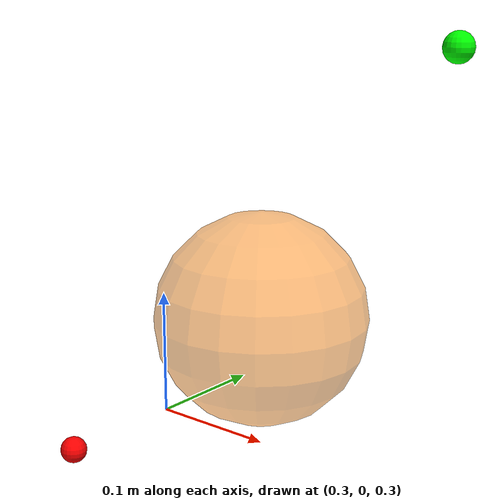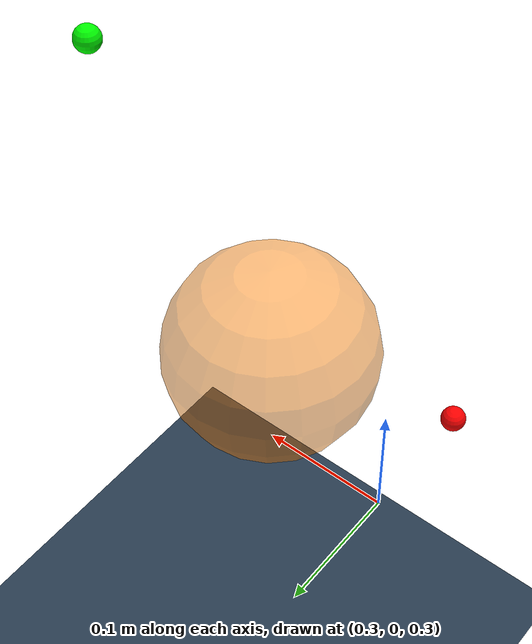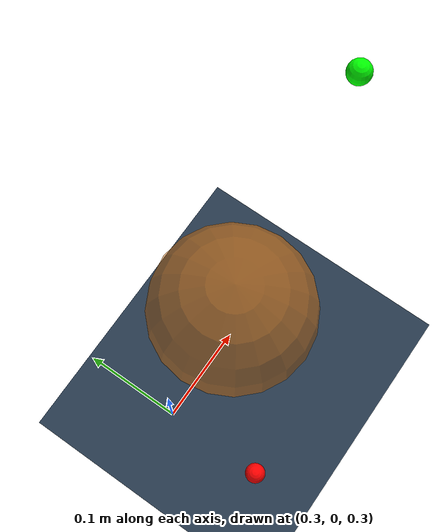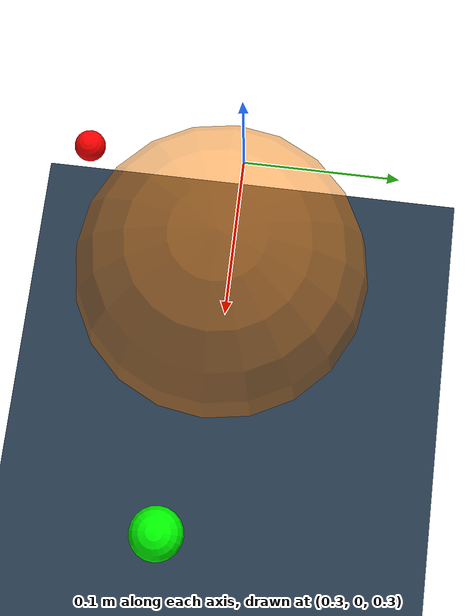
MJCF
<mujoco model="path_planning">
        <visual>
            <headlight diffuse="0.6 0.6 0.6" ambient="0.1 0.1 0.1" specular="0 0 0"/>
            <global azimuth="120" elevation="-20"/>
        </visual>
        <asset>
            <texture name="grid" type="2d" builtin="checker" rgb1=".2 .3 .4" rgb2=".1 0.15 0.2" width="512" height="512"
                mark="cross" markrgb=".8 .8 .8"/>
            <material name="grid" texture="grid" texrepeat="1 1" texuniform="true"/>
        </asset>
        <worldbody>
            <!-- Start Marker -->
            <geom name="floor" size="1 1 0.01" type="plane" material="grid"/>
            <body name="start_marker" pos="0.55 0 0.6">
                <geom type="sphere" size="0.01" rgba="0 1 0 1" />
            </body>
            <!-- Goal Marker -->
            <body name="goal_marker" pos="0.3 -0.1 0.3">
                <geom type="sphere" size="0.01" rgba="1 0 0 1" />
            </body>
            <!-- Obstacle -->
            <body name="obstacle" pos="0.4 0 0.4">
                <geom type="sphere" size="0.08" rgba="1 0.5 0 0.5" />
            </body>
            <!-- Movable Agent -->
            <body name="agent" pos="0.55 0 0.6">
                <geom type="sphere" size="0.01" rgba="0 0 1 1" />
                <joint name="agent_joint_x" type="free" axis="1 0 0" />
            </body>
        </worldbody>
    </mujoco>
